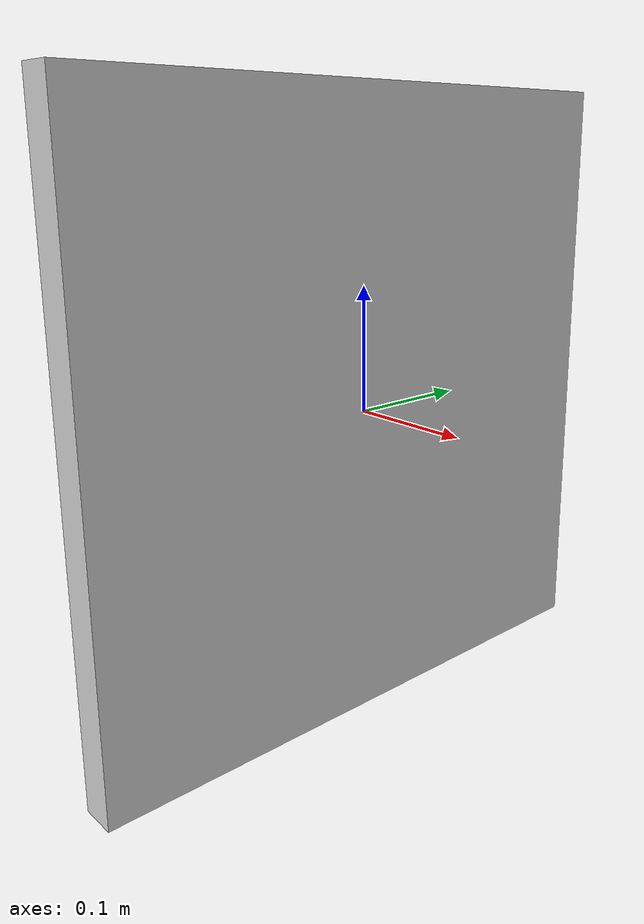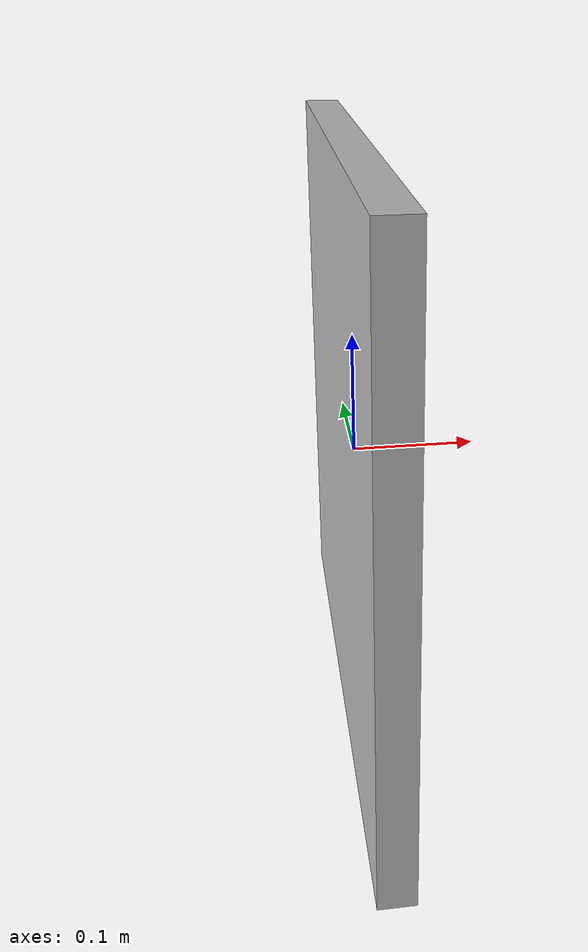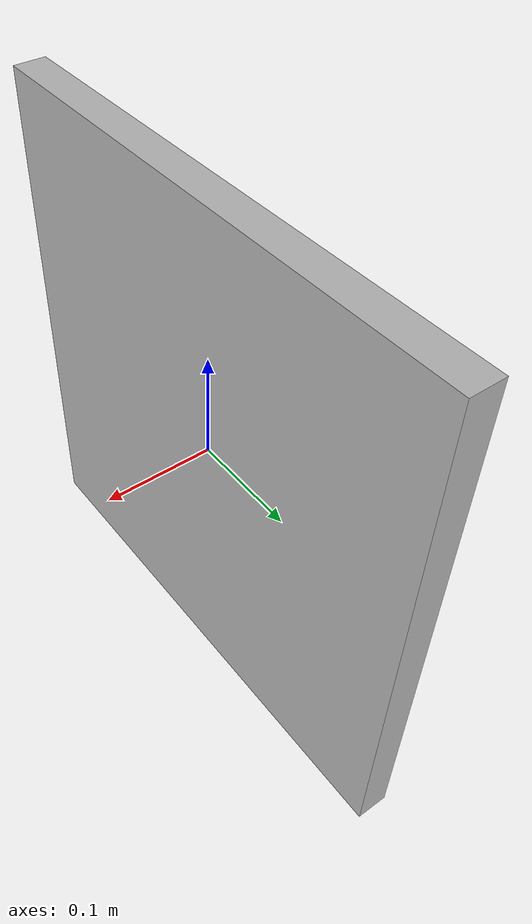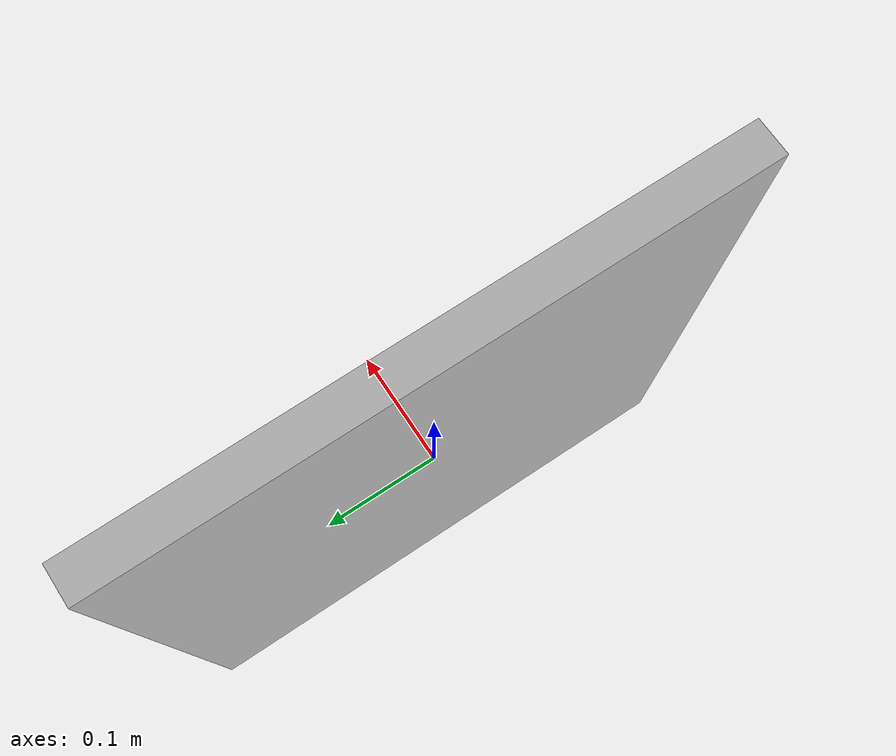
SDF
<?xml version="1.0"?>
<sdf version="1.5">
  <model name="artag">
    <static>true</static>
    <link name="body">
      <visual name="visual">
        <geometry>
          <mesh>
            <uri>model://artag/artag.dae</uri>
          </mesh>
        </geometry>
      </visual>
    </link>
  </model>
</sdf>
